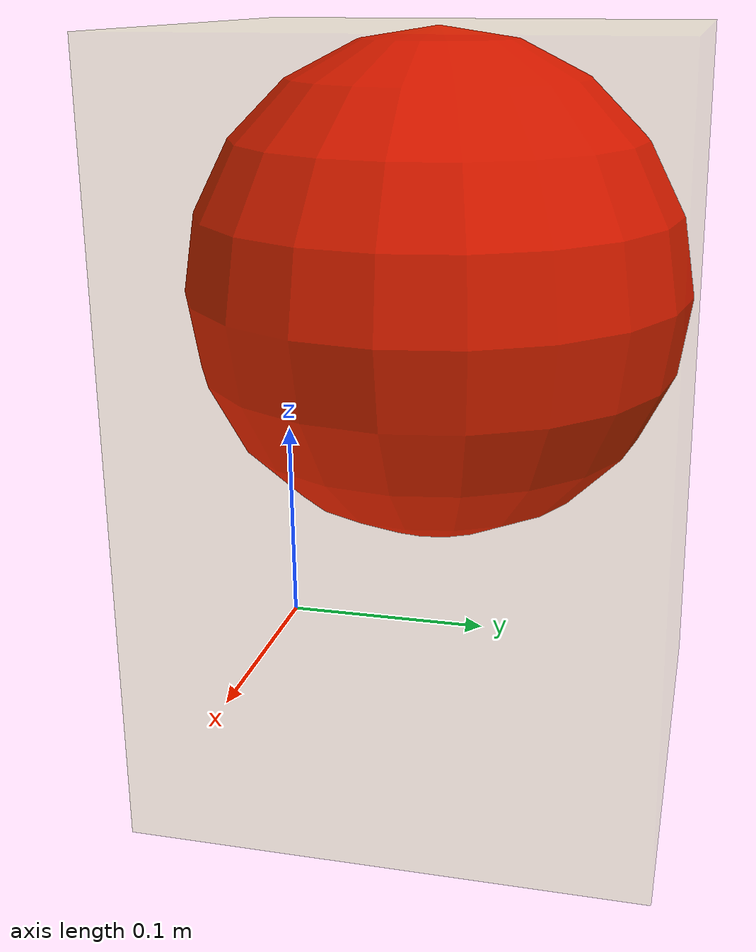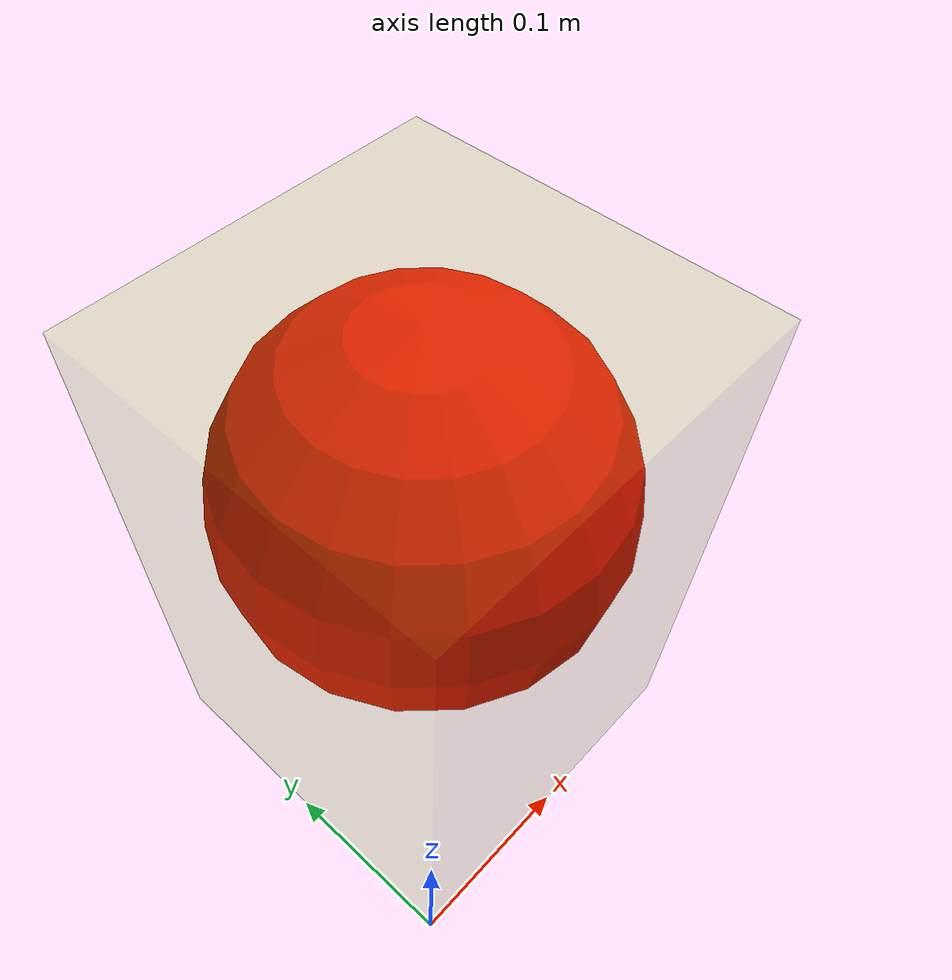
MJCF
<?xml version="1.0" encoding="utf-8"?>
<mujoco>
	<option timestep="0.005"/>
	<worldbody>
		<body name="simpleagent" pos="0.1 0.1 0.15">
			<joint axis="1 0 0" damping="10" name="tx" pos="0 0 0" type="slide"></joint>
            <geom name="agent" mass="1" pos="0 0 0.05" rgba="1 0 0 1" type="sphere" size="0.1"></geom>
		</body>
        <body name="annotation:outer_bound" pos="0.1 0.1 0.15">
			<geom conaffinity="0" contype="0" mass="0" pos="0 0 0" rgba="0.417 0.7203 0.0001 0.1" size="0.1 0.1 0.15" type="box"></geom>
		</body>
	</worldbody>
	<actuator>
		<motor name="motortx" ctrllimited="true" ctrlrange="-150 150" forcelimited="true" forcerange="-150 150" joint="tx"></motor>
	</actuator>
</mujoco>
